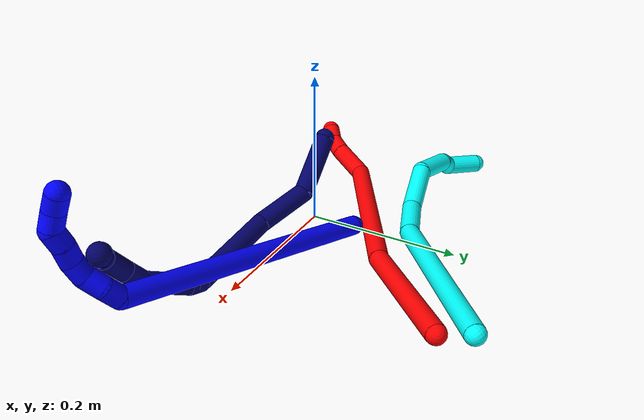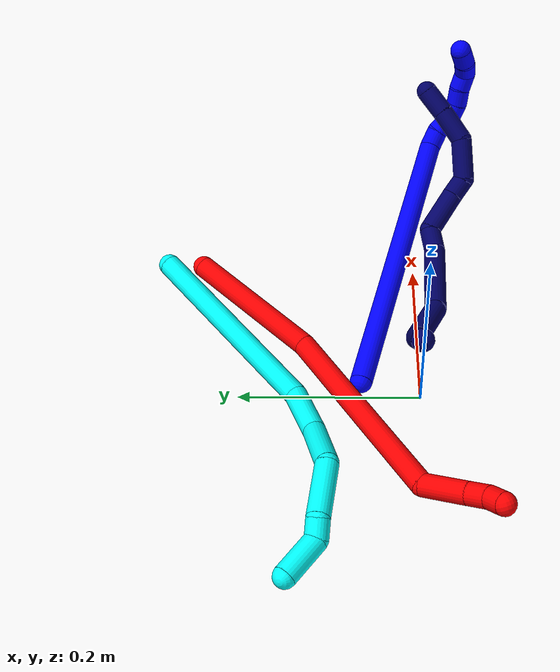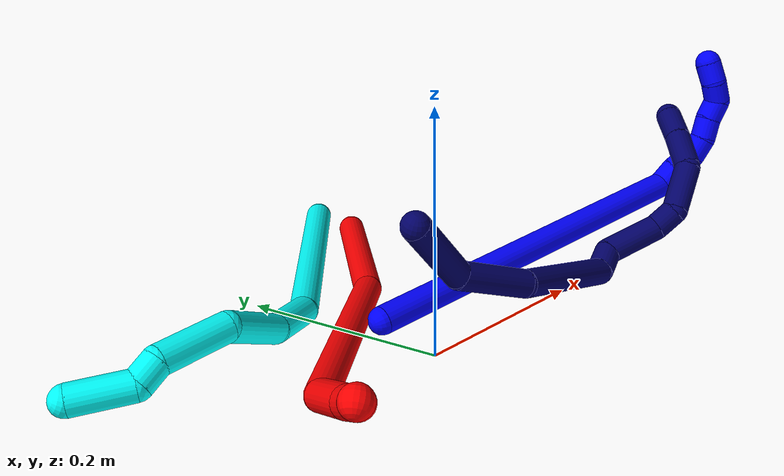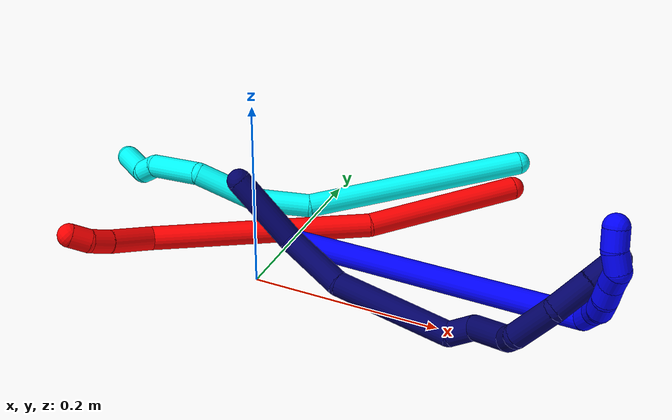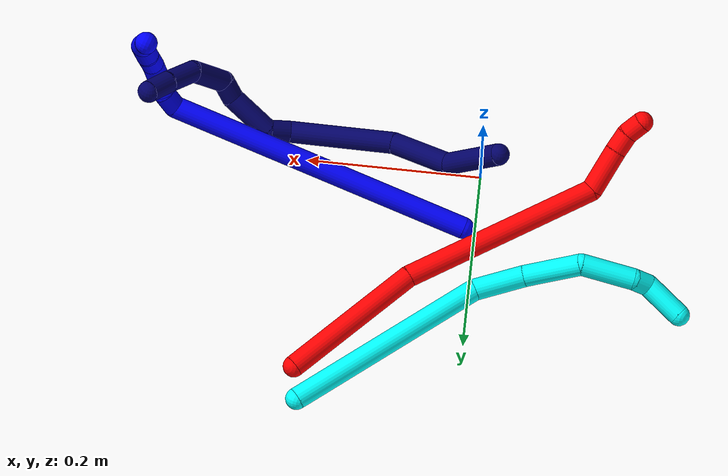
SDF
<sdf version="1.7">
 <world name="default">
  <model name="1">
   <static>0</static>
   <link name="1">
    <collision name="collision-cylinder-e_1_1_4">
     <pose>-0.001566 -0.007687 0.177678 0.043237 -0.008804 -0.00019</pose>
     <geometry><cylinder><radius>0.0125</radius><length>0.355702</length></cylinder></geometry>
     <surface>
      <friction><ode><mu>1.16</mu><mu2>1.16</mu2><slip1>0</slip1><slip2>0</slip2></ode></friction>
      <contact><ode><kp>1e+06</kp><kd>1</kd><max_vel>0</max_vel><min_depth>0.001</min_depth></ode></contact>
     </surface>
    </collision>
    <visual name="visual-cylinder-e_1_1_4">
     <pose>-0.001566 -0.007687 0.177678 0.043237 -0.008804 -0.00019</pose>
     <geometry><cylinder><radius>0.0125</radius><length>0.355702</length></cylinder></geometry>
     <material><ambient>0 0 1 1</ambient></material>
    </visual>
    <collision name="collision-cylinder-e_2_4_5">
     <pose>0.00257 -0.01144 0.363805 -0.435722 0.549009 -0.124523</pose>
     <geometry><cylinder><radius>0.0125</radius><length>0.021851</length></cylinder></geometry>
     <surface>
      <friction><ode><mu>1.16</mu><mu2>1.16</mu2><slip1>0</slip1><slip2>0</slip2></ode></friction>
      <contact><ode><kp>1e+06</kp><kd>1</kd><max_vel>0</max_vel><min_depth>0.001</min_depth></ode></contact>
     </surface>
    </collision>
    <visual name="visual-cylinder-e_2_4_5">
     <pose>0.00257 -0.01144 0.363805 -0.435722 0.549009 -0.124523</pose>
     <geometry><cylinder><radius>0.0125</radius><length>0.021851</length></cylinder></geometry>
     <material><ambient>0 0 1 1</ambient></material>
    </visual>
    <collision name="collision-cylinder-e_3_5_6">
     <pose>0.012336 -0.000748 0.379613 -0.742903 0.386412 -0.152128</pose>
     <geometry><cylinder><radius>0.0125</radius><length>0.021573</length></cylinder></geometry>
     <surface>
      <friction><ode><mu>1.16</mu><mu2>1.16</mu2><slip1>0</slip1><slip2>0</slip2></ode></friction>
      <contact><ode><kp>1e+06</kp><kd>1</kd><max_vel>0</max_vel><min_depth>0.001</min_depth></ode></contact>
     </surface>
    </collision>
    <visual name="visual-cylinder-e_3_5_6">
     <pose>0.012336 -0.000748 0.379613 -0.742903 0.386412 -0.152128</pose>
     <geometry><cylinder><radius>0.0125</radius><length>0.021573</length></cylinder></geometry>
     <material><ambient>0 0 1 1</ambient></material>
    </visual>
    <collision name="collision-cylinder-e_4_6_7">
     <pose>0.023668 0.010847 0.392634 -0.706877 0.773091 -0.298099</pose>
     <geometry><cylinder><radius>0.0125</radius><length>0.020809</length></cylinder></geometry>
     <surface>
      <friction><ode><mu>1.16</mu><mu2>1.16</mu2><slip1>0</slip1><slip2>0</slip2></ode></friction>
      <contact><ode><kp>1e+06</kp><kd>1</kd><max_vel>0</max_vel><min_depth>0.001</min_depth></ode></contact>
     </surface>
    </collision>
    <visual name="visual-cylinder-e_4_6_7">
     <pose>0.023668 0.010847 0.392634 -0.706877 0.773091 -0.298099</pose>
     <geometry><cylinder><radius>0.0125</radius><length>0.020809</length></cylinder></geometry>
     <material><ambient>0 0 1 1</ambient></material>
    </visual>
    <collision name="collision-cylinder-e_5_7_8">
     <pose>0.039541 0.018178 0.402748 -0.510825 1.03573 -0.295365</pose>
     <geometry><cylinder><radius>0.0125</radius><length>0.020013</length></cylinder></geometry>
     <surface>
      <friction><ode><mu>1.16</mu><mu2>1.16</mu2><slip1>0</slip1><slip2>0</slip2></ode></friction>
      <contact><ode><kp>1e+06</kp><kd>1</kd><max_vel>0</max_vel><min_depth>0.001</min_depth></ode></contact>
     </surface>
    </collision>
    <visual name="visual-cylinder-e_5_7_8">
     <pose>0.039541 0.018178 0.402748 -0.510825 1.03573 -0.295365</pose>
     <geometry><cylinder><radius>0.0125</radius><length>0.020013</length></cylinder></geometry>
     <material><ambient>0 0 1 1</ambient></material>
    </visual>
    <collision name="collision-cylinder-e_6_8_9">
     <pose>0.055709 0.0243 0.412673 -0.585214 0.855601 -0.273012</pose>
     <geometry><cylinder><radius>0.0125</radius><length>0.020028</length></cylinder></geometry>
     <surface>
      <friction><ode><mu>1.16</mu><mu2>1.16</mu2><slip1>0</slip1><slip2>0</slip2></ode></friction>
      <contact><ode><kp>1e+06</kp><kd>1</kd><max_vel>0</max_vel><min_depth>0.001</min_depth></ode></contact>
     </surface>
    </collision>
    <visual name="visual-cylinder-e_6_8_9">
     <pose>0.055709 0.0243 0.412673 -0.585214 0.855601 -0.273012</pose>
     <geometry><cylinder><radius>0.0125</radius><length>0.020028</length></cylinder></geometry>
     <material><ambient>0 0 1 1</ambient></material>
    </visual>
    <collision name="collision-cylinder-e_7_9_10">
     <pose>0.073004 0.029903 0.416972 -2.10718 1.33888 -1.89506</pose>
     <geometry><cylinder><radius>0.0125</radius><length>0.020004</length></cylinder></geometry>
     <surface>
      <friction><ode><mu>1.16</mu><mu2>1.16</mu2><slip1>0</slip1><slip2>0</slip2></ode></friction>
      <contact><ode><kp>1e+06</kp><kd>1</kd><max_vel>0</max_vel><min_depth>0.001</min_depth></ode></contact>
     </surface>
    </collision>
    <visual name="visual-cylinder-e_7_9_10">
     <pose>0.073004 0.029903 0.416972 -2.10718 1.33888 -1.89506</pose>
     <geometry><cylinder><radius>0.0125</radius><length>0.020004</length></cylinder></geometry>
     <material><ambient>0 0 1 1</ambient></material>
    </visual>
    <collision name="collision-cylinder-e_8_10_2">
     <pose>0.09274 0.031463 0.415761 1.65754 1.52901 1.61583</pose>
     <geometry><cylinder><radius>0.0125</radius><length>0.020019</length></cylinder></geometry>
     <surface>
      <friction><ode><mu>1.16</mu><mu2>1.16</mu2><slip1>0</slip1><slip2>0</slip2></ode></friction>
      <contact><ode><kp>1e+06</kp><kd>1</kd><max_vel>0</max_vel><min_depth>0.001</min_depth></ode></contact>
     </surface>
    </collision>
    <visual name="visual-cylinder-e_8_10_2">
     <pose>0.09274 0.031463 0.415761 1.65754 1.52901 1.61583</pose>
     <geometry><cylinder><radius>0.0125</radius><length>0.020019</length></cylinder></geometry>
     <material><ambient>0 0 1 1</ambient></material>
    </visual>
    <collision name="collision-sphere-2">
     <pose>0.102741 0.031046 0.415725 0 -0 0</pose>
     <geometry><sphere><radius>0.0125</radius></sphere></geometry>
     <surface>
      <friction><ode><mu>1.16</mu><mu2>1.16</mu2><slip1>0</slip1><slip2>0</slip2></ode></friction>
      <contact><ode><kp>1e+06</kp><kd>1</kd><max_vel>0</max_vel><min_depth>0.001</min_depth></ode></contact>
     </surface>
    </collision>
    <visual name="visual-sphere-2">
     <pose>0.102741 0.031046 0.415725 0 -0 0</pose>
     <geometry><sphere><radius>0.0125</radius></sphere></geometry>
     <material><ambient>0 0 1 1</ambient></material>
    </visual>
    <collision name="collision-sphere-10">
     <pose>0.082739 0.031879 0.415797 0 -0 0</pose>
     <geometry><sphere><radius>0.0125</radius></sphere></geometry>
     <surface>
      <friction><ode><mu>1.16</mu><mu2>1.16</mu2><slip1>0</slip1><slip2>0</slip2></ode></friction>
      <contact><ode><kp>1e+06</kp><kd>1</kd><max_vel>0</max_vel><min_depth>0.001</min_depth></ode></contact>
     </surface>
    </collision>
    <visual name="visual-sphere-10">
     <pose>0.082739 0.031879 0.415797 0 -0 0</pose>
     <geometry><sphere><radius>0.0125</radius></sphere></geometry>
     <material><ambient>0 0 1 1</ambient></material>
    </visual>
    <collision name="collision-sphere-9">
     <pose>0.06327 0.027927 0.418147 0 -0 0</pose>
     <geometry><sphere><radius>0.0125</radius></sphere></geometry>
     <surface>
      <friction><ode><mu>1.16</mu><mu2>1.16</mu2><slip1>0</slip1><slip2>0</slip2></ode></friction>
      <contact><ode><kp>1e+06</kp><kd>1</kd><max_vel>0</max_vel><min_depth>0.001</min_depth></ode></contact>
     </surface>
    </collision>
    <visual name="visual-sphere-9">
     <pose>0.06327 0.027927 0.418147 0 -0 0</pose>
     <geometry><sphere><radius>0.0125</radius></sphere></geometry>
     <material><ambient>0 0 1 1</ambient></material>
    </visual>
    <collision name="collision-sphere-4">
     <pose>-0.003131 -0.015374 0.355356 0 -0 0</pose>
     <geometry><sphere><radius>0.0125</radius></sphere></geometry>
     <surface>
      <friction><ode><mu>1.16</mu><mu2>1.16</mu2><slip1>0</slip1><slip2>0</slip2></ode></friction>
      <contact><ode><kp>1e+06</kp><kd>1</kd><max_vel>0</max_vel><min_depth>0.001</min_depth></ode></contact>
     </surface>
    </collision>
    <visual name="visual-sphere-4">
     <pose>-0.003131 -0.015374 0.355356 0 -0 0</pose>
     <geometry><sphere><radius>0.0125</radius></sphere></geometry>
     <material><ambient>0 0 1 1</ambient></material>
    </visual>
    <collision name="collision-sphere-1">
     <geometry><sphere><radius>0.0125</radius></sphere></geometry>
     <surface>
      <friction><ode><mu>1.16</mu><mu2>1.16</mu2><slip1>0</slip1><slip2>0</slip2></ode></friction>
      <contact><ode><kp>1e+06</kp><kd>1</kd><max_vel>0</max_vel><min_depth>0.001</min_depth></ode></contact>
     </surface>
    </collision>
    <visual name="visual-sphere-1">
     <geometry><sphere><radius>0.0125</radius></sphere></geometry>
     <material><ambient>0 0 1 1</ambient></material>
    </visual>
    <collision name="collision-sphere-8">
     <pose>0.048149 0.020672 0.407198 0 -0 0</pose>
     <geometry><sphere><radius>0.0125</radius></sphere></geometry>
     <surface>
      <friction><ode><mu>1.16</mu><mu2>1.16</mu2><slip1>0</slip1><slip2>0</slip2></ode></friction>
      <contact><ode><kp>1e+06</kp><kd>1</kd><max_vel>0</max_vel><min_depth>0.001</min_depth></ode></contact>
     </surface>
    </collision>
    <visual name="visual-sphere-8">
     <pose>0.048149 0.020672 0.407198 0 -0 0</pose>
     <geometry><sphere><radius>0.0125</radius></sphere></geometry>
     <material><ambient>0 0 1 1</ambient></material>
    </visual>
    <collision name="collision-sphere-5">
     <pose>0.008271 -0.007507 0.372254 0 -0 0</pose>
     <geometry><sphere><radius>0.0125</radius></sphere></geometry>
     <surface>
      <friction><ode><mu>1.16</mu><mu2>1.16</mu2><slip1>0</slip1><slip2>0</slip2></ode></friction>
      <contact><ode><kp>1e+06</kp><kd>1</kd><max_vel>0</max_vel><min_depth>0.001</min_depth></ode></contact>
     </surface>
    </collision>
    <visual name="visual-sphere-5">
     <pose>0.008271 -0.007507 0.372254 0 -0 0</pose>
     <geometry><sphere><radius>0.0125</radius></sphere></geometry>
     <material><ambient>0 0 1 1</ambient></material>
    </visual>
    <collision name="collision-sphere-6">
     <pose>0.016402 0.00601 0.386971 0 -0 0</pose>
     <geometry><sphere><radius>0.0125</radius></sphere></geometry>
     <surface>
      <friction><ode><mu>1.16</mu><mu2>1.16</mu2><slip1>0</slip1><slip2>0</slip2></ode></friction>
      <contact><ode><kp>1e+06</kp><kd>1</kd><max_vel>0</max_vel><min_depth>0.001</min_depth></ode></contact>
     </surface>
    </collision>
    <visual name="visual-sphere-6">
     <pose>0.016402 0.00601 0.386971 0 -0 0</pose>
     <geometry><sphere><radius>0.0125</radius></sphere></geometry>
     <material><ambient>0 0 1 1</ambient></material>
    </visual>
    <collision name="collision-sphere-7">
     <pose>0.030934 0.015683 0.398297 0 -0 0</pose>
     <geometry><sphere><radius>0.0125</radius></sphere></geometry>
     <surface>
      <friction><ode><mu>1.16</mu><mu2>1.16</mu2><slip1>0</slip1><slip2>0</slip2></ode></friction>
      <contact><ode><kp>1e+06</kp><kd>1</kd><max_vel>0</max_vel><min_depth>0.001</min_depth></ode></contact>
     </surface>
    </collision>
    <visual name="visual-sphere-7">
     <pose>0.030934 0.015683 0.398297 0 -0 0</pose>
     <geometry><sphere><radius>0.0125</radius></sphere></geometry>
     <material><ambient>0 0 1 1</ambient></material>
    </visual>
    <inertial>
     <pose>0.010964 -0.001392 0.240999 0 -0 0</pose>
     <mass>0.5</mass>
     <inertia>
      <ixx>0.003776</ixx>
      <ixy>0</ixy>
      <ixz>0</ixz>
      <iyy>0.003771</iyy>
      <iyz>0</iyz>
      <izz>0.000217</izz>
     </inertia>
    </inertial>
   </link>
   <pose>0.013234 0.064981 0.011856 0.830226 -1.27227 1.98934</pose>
  </model>
  <model name="2">
   <static>0</static>
   <link name="2">
    <collision name="collision-cylinder-e_1_1_4">
     <pose>-0.030036 -0.052228 -0.058912 2.41626 -0.364463 -0.904189</pose>
     <geometry><cylinder><radius>0.0125</radius><length>0.168531</length></cylinder></geometry>
     <surface>
      <friction><ode><mu>1.16</mu><mu2>1.16</mu2><slip1>0</slip1><slip2>0</slip2></ode></friction>
      <contact><ode><kp>1e+06</kp><kd>1</kd><max_vel>0</max_vel><min_depth>0.001</min_depth></ode></contact>
     </surface>
    </collision>
    <visual name="visual-cylinder-e_1_1_4">
     <pose>-0.030036 -0.052228 -0.058912 2.41626 -0.364463 -0.904189</pose>
     <geometry><cylinder><radius>0.0125</radius><length>0.168531</length></cylinder></geometry>
     <material><ambient>1 0 0 1</ambient></material>
    </visual>
    <collision name="collision-cylinder-e_2_4_5">
     <pose>-0.124898 -0.159164 -0.197714 2.54115 -0.589967 -1.55211</pose>
     <geometry><cylinder><radius>0.0125</radius><length>0.233045</length></cylinder></geometry>
     <surface>
      <friction><ode><mu>1.16</mu><mu2>1.16</mu2><slip1>0</slip1><slip2>0</slip2></ode></friction>
      <contact><ode><kp>1e+06</kp><kd>1</kd><max_vel>0</max_vel><min_depth>0.001</min_depth></ode></contact>
     </surface>
    </collision>
    <visual name="visual-cylinder-e_2_4_5">
     <pose>-0.124898 -0.159164 -0.197714 2.54115 -0.589967 -1.55211</pose>
     <geometry><cylinder><radius>0.0125</radius><length>0.233045</length></cylinder></geometry>
     <material><ambient>1 0 0 1</ambient></material>
    </visual>
    <collision name="collision-cylinder-e_3_5_6">
     <pose>-0.198238 -0.23721 -0.286027 1.91722 -0.33058 -0.466479</pose>
     <geometry><cylinder><radius>0.0125</radius><length>0.052466</length></cylinder></geometry>
     <surface>
      <friction><ode><mu>1.16</mu><mu2>1.16</mu2><slip1>0</slip1><slip2>0</slip2></ode></friction>
      <contact><ode><kp>1e+06</kp><kd>1</kd><max_vel>0</max_vel><min_depth>0.001</min_depth></ode></contact>
     </surface>
    </collision>
    <visual name="visual-cylinder-e_3_5_6">
     <pose>-0.198238 -0.23721 -0.286027 1.91722 -0.33058 -0.466479</pose>
     <geometry><cylinder><radius>0.0125</radius><length>0.052466</length></cylinder></geometry>
     <material><ambient>1 0 0 1</ambient></material>
    </visual>
    <collision name="collision-cylinder-e_4_6_7">
     <pose>-0.211676 -0.27094 -0.297744 1.87762 -0.424203 -0.572098</pose>
     <geometry><cylinder><radius>0.0125</radius><length>0.023923</length></cylinder></geometry>
     <surface>
      <friction><ode><mu>1.16</mu><mu2>1.16</mu2><slip1>0</slip1><slip2>0</slip2></ode></friction>
      <contact><ode><kp>1e+06</kp><kd>1</kd><max_vel>0</max_vel><min_depth>0.001</min_depth></ode></contact>
     </surface>
    </collision>
    <visual name="visual-cylinder-e_4_6_7">
     <pose>-0.211676 -0.27094 -0.297744 1.87762 -0.424203 -0.572098</pose>
     <geometry><cylinder><radius>0.0125</radius><length>0.023923</length></cylinder></geometry>
     <material><ambient>1 0 0 1</ambient></material>
    </visual>
    <collision name="collision-cylinder-e_5_7_2">
     <pose>-0.224195 -0.288681 -0.304151 1.9717 -0.760682 -1.08628</pose>
     <geometry><cylinder><radius>0.0125</radius><length>0.022037</length></cylinder></geometry>
     <surface>
      <friction><ode><mu>1.16</mu><mu2>1.16</mu2><slip1>0</slip1><slip2>0</slip2></ode></friction>
      <contact><ode><kp>1e+06</kp><kd>1</kd><max_vel>0</max_vel><min_depth>0.001</min_depth></ode></contact>
     </surface>
    </collision>
    <visual name="visual-cylinder-e_5_7_2">
     <pose>-0.224195 -0.288681 -0.304151 1.9717 -0.760682 -1.08628</pose>
     <geometry><cylinder><radius>0.0125</radius><length>0.022037</length></cylinder></geometry>
     <material><ambient>1 0 0 1</ambient></material>
    </visual>
    <collision name="collision-sphere-2">
     <pose>-0.231792 -0.296029 -0.307266 0 -0 0</pose>
     <geometry><sphere><radius>0.0125</radius></sphere></geometry>
     <surface>
      <friction><ode><mu>1.16</mu><mu2>1.16</mu2><slip1>0</slip1><slip2>0</slip2></ode></friction>
      <contact><ode><kp>1e+06</kp><kd>1</kd><max_vel>0</max_vel><min_depth>0.001</min_depth></ode></contact>
     </surface>
    </collision>
    <visual name="visual-sphere-2">
     <pose>-0.231792 -0.296029 -0.307266 0 -0 0</pose>
     <geometry><sphere><radius>0.0125</radius></sphere></geometry>
     <material><ambient>1 0 0 1</ambient></material>
    </visual>
    <collision name="collision-sphere-7">
     <pose>-0.216599 -0.281332 -0.301037 0 -0 0</pose>
     <geometry><sphere><radius>0.0125</radius></sphere></geometry>
     <surface>
      <friction><ode><mu>1.16</mu><mu2>1.16</mu2><slip1>0</slip1><slip2>0</slip2></ode></friction>
      <contact><ode><kp>1e+06</kp><kd>1</kd><max_vel>0</max_vel><min_depth>0.001</min_depth></ode></contact>
     </surface>
    </collision>
    <visual name="visual-sphere-7">
     <pose>-0.216599 -0.281332 -0.301037 0 -0 0</pose>
     <geometry><sphere><radius>0.0125</radius></sphere></geometry>
     <material><ambient>1 0 0 1</ambient></material>
    </visual>
    <collision name="collision-sphere-6">
     <pose>-0.206753 -0.260548 -0.294452 0 -0 0</pose>
     <geometry><sphere><radius>0.0125</radius></sphere></geometry>
     <surface>
      <friction><ode><mu>1.16</mu><mu2>1.16</mu2><slip1>0</slip1><slip2>0</slip2></ode></friction>
      <contact><ode><kp>1e+06</kp><kd>1</kd><max_vel>0</max_vel><min_depth>0.001</min_depth></ode></contact>
     </surface>
    </collision>
    <visual name="visual-sphere-6">
     <pose>-0.206753 -0.260548 -0.294452 0 -0 0</pose>
     <geometry><sphere><radius>0.0125</radius></sphere></geometry>
     <material><ambient>1 0 0 1</ambient></material>
    </visual>
    <collision name="collision-sphere-5">
     <pose>-0.189723 -0.213871 -0.277603 0 -0 0</pose>
     <geometry><sphere><radius>0.0125</radius></sphere></geometry>
     <surface>
      <friction><ode><mu>1.16</mu><mu2>1.16</mu2><slip1>0</slip1><slip2>0</slip2></ode></friction>
      <contact><ode><kp>1e+06</kp><kd>1</kd><max_vel>0</max_vel><min_depth>0.001</min_depth></ode></contact>
     </surface>
    </collision>
    <visual name="visual-sphere-5">
     <pose>-0.189723 -0.213871 -0.277603 0 -0 0</pose>
     <geometry><sphere><radius>0.0125</radius></sphere></geometry>
     <material><ambient>1 0 0 1</ambient></material>
    </visual>
    <collision name="collision-sphere-1">
     <geometry><sphere><radius>0.0125</radius></sphere></geometry>
     <surface>
      <friction><ode><mu>1.16</mu><mu2>1.16</mu2><slip1>0</slip1><slip2>0</slip2></ode></friction>
      <contact><ode><kp>1e+06</kp><kd>1</kd><max_vel>0</max_vel><min_depth>0.001</min_depth></ode></contact>
     </surface>
    </collision>
    <visual name="visual-sphere-1">
     <geometry><sphere><radius>0.0125</radius></sphere></geometry>
     <material><ambient>1 0 0 1</ambient></material>
    </visual>
    <collision name="collision-sphere-4">
     <pose>-0.060072 -0.104457 -0.117825 0 -0 0</pose>
     <geometry><sphere><radius>0.0125</radius></sphere></geometry>
     <surface>
      <friction><ode><mu>1.16</mu><mu2>1.16</mu2><slip1>0</slip1><slip2>0</slip2></ode></friction>
      <contact><ode><kp>1e+06</kp><kd>1</kd><max_vel>0</max_vel><min_depth>0.001</min_depth></ode></contact>
     </surface>
    </collision>
    <visual name="visual-sphere-4">
     <pose>-0.060072 -0.104457 -0.117825 0 -0 0</pose>
     <geometry><sphere><radius>0.0125</radius></sphere></geometry>
     <material><ambient>1 0 0 1</ambient></material>
    </visual>
    <inertial>
     <pose>-0.109148 -0.142366 -0.169673 0 -0 0</pose>
     <mass>0.5</mass>
     <inertia>
      <ixx>-0.000943</ixx>
      <ixy>0</ixy>
      <ixz>0</ixz>
      <iyy>-0.001009</iyy>
      <iyz>0</iyz>
      <izz>0.001485</izz>
     </inertia>
    </inertial>
   </link>
   <pose>0.186507 0.24909 0.022735 -0.482882 0.611522 -0.265885</pose>
  </model>
  <model name="3">
   <static>0</static>
   <link name="3">
    <collision name="collision-cylinder-e_1_1_4">
     <pose>-0.111582 -0.017149 0.041565 0.391317 -1.18774 -0.26605</pose>
     <geometry><cylinder><radius>0.0125</radius><length>0.240602</length></cylinder></geometry>
     <surface>
      <friction><ode><mu>1.16</mu><mu2>1.16</mu2><slip1>0</slip1><slip2>0</slip2></ode></friction>
      <contact><ode><kp>1e+06</kp><kd>1</kd><max_vel>0</max_vel><min_depth>0.001</min_depth></ode></contact>
     </surface>
    </collision>
    <visual name="visual-cylinder-e_1_1_4">
     <pose>-0.111582 -0.017149 0.041565 0.391317 -1.18774 -0.26605</pose>
     <geometry><cylinder><radius>0.0125</radius><length>0.240602</length></cylinder></geometry>
     <material><ambient>0.003922 1 0.996078 1</ambient></material>
    </visual>
    <collision name="collision-cylinder-e_2_4_5">
     <pose>-0.245058 -0.03839 0.102449 0.208671 -0.836893 -0.093069</pose>
     <geometry><cylinder><radius>0.0125</radius><length>0.058968</length></cylinder></geometry>
     <surface>
      <friction><ode><mu>1.16</mu><mu2>1.16</mu2><slip1>0</slip1><slip2>0</slip2></ode></friction>
      <contact><ode><kp>1e+06</kp><kd>1</kd><max_vel>0</max_vel><min_depth>0.001</min_depth></ode></contact>
     </surface>
    </collision>
    <visual name="visual-cylinder-e_2_4_5">
     <pose>-0.245058 -0.03839 0.102449 0.208671 -0.836893 -0.093069</pose>
     <geometry><cylinder><radius>0.0125</radius><length>0.058968</length></cylinder></geometry>
     <material><ambient>0.003922 1 0.996078 1</ambient></material>
    </visual>
    <collision name="collision-cylinder-e_3_5_6">
     <pose>-0.284615 -0.053197 0.149144 0.373113 -0.540998 -0.104584</pose>
     <geometry><cylinder><radius>0.0125</radius><length>0.068594</length></cylinder></geometry>
     <surface>
      <friction><ode><mu>1.16</mu><mu2>1.16</mu2><slip1>0</slip1><slip2>0</slip2></ode></friction>
      <contact><ode><kp>1e+06</kp><kd>1</kd><max_vel>0</max_vel><min_depth>0.001</min_depth></ode></contact>
     </surface>
    </collision>
    <visual name="visual-cylinder-e_3_5_6">
     <pose>-0.284615 -0.053197 0.149144 0.373113 -0.540998 -0.104584</pose>
     <geometry><cylinder><radius>0.0125</radius><length>0.068594</length></cylinder></geometry>
     <material><ambient>0.003922 1 0.996078 1</ambient></material>
    </visual>
    <collision name="collision-cylinder-e_4_6_7">
     <pose>-0.316675 -0.05481 0.202013 -0.34302 -0.48881 0.086341</pose>
     <geometry><cylinder><radius>0.0125</radius><length>0.061318</length></cylinder></geometry>
     <surface>
      <friction><ode><mu>1.16</mu><mu2>1.16</mu2><slip1>0</slip1><slip2>0</slip2></ode></friction>
      <contact><ode><kp>1e+06</kp><kd>1</kd><max_vel>0</max_vel><min_depth>0.001</min_depth></ode></contact>
     </surface>
    </collision>
    <visual name="visual-cylinder-e_4_6_7">
     <pose>-0.316675 -0.05481 0.202013 -0.34302 -0.48881 0.086341</pose>
     <geometry><cylinder><radius>0.0125</radius><length>0.061318</length></cylinder></geometry>
     <material><ambient>0.003922 1 0.996078 1</ambient></material>
    </visual>
    <collision name="collision-cylinder-e_5_7_8">
     <pose>-0.33732 -0.038814 0.233177 -0.882114 -0.610803 0.295486</pose>
     <geometry><cylinder><radius>0.0125</radius><length>0.021792</length></cylinder></geometry>
     <surface>
      <friction><ode><mu>1.16</mu><mu2>1.16</mu2><slip1>0</slip1><slip2>0</slip2></ode></friction>
      <contact><ode><kp>1e+06</kp><kd>1</kd><max_vel>0</max_vel><min_depth>0.001</min_depth></ode></contact>
     </surface>
    </collision>
    <visual name="visual-cylinder-e_5_7_8">
     <pose>-0.33732 -0.038814 0.233177 -0.882114 -0.610803 0.295486</pose>
     <geometry><cylinder><radius>0.0125</radius><length>0.021792</length></cylinder></geometry>
     <material><ambient>0.003922 1 0.996078 1</ambient></material>
    </visual>
    <collision name="collision-cylinder-e_6_8_2">
     <pose>-0.34322 -0.020548 0.260391 -0.485829 0.014353 -0.003557</pose>
     <geometry><cylinder><radius>0.0125</radius><length>0.048726</length></cylinder></geometry>
     <surface>
      <friction><ode><mu>1.16</mu><mu2>1.16</mu2><slip1>0</slip1><slip2>0</slip2></ode></friction>
      <contact><ode><kp>1e+06</kp><kd>1</kd><max_vel>0</max_vel><min_depth>0.001</min_depth></ode></contact>
     </surface>
    </collision>
    <visual name="visual-cylinder-e_6_8_2">
     <pose>-0.34322 -0.020548 0.260391 -0.485829 0.014353 -0.003557</pose>
     <geometry><cylinder><radius>0.0125</radius><length>0.048726</length></cylinder></geometry>
     <material><ambient>0.003922 1 0.996078 1</ambient></material>
    </visual>
    <collision name="collision-sphere-2">
     <pose>-0.34287 -0.009173 0.281933 0 -0 0</pose>
     <geometry><sphere><radius>0.0125</radius></sphere></geometry>
     <surface>
      <friction><ode><mu>1.16</mu><mu2>1.16</mu2><slip1>0</slip1><slip2>0</slip2></ode></friction>
      <contact><ode><kp>1e+06</kp><kd>1</kd><max_vel>0</max_vel><min_depth>0.001</min_depth></ode></contact>
     </surface>
    </collision>
    <visual name="visual-sphere-2">
     <pose>-0.34287 -0.009173 0.281933 0 -0 0</pose>
     <geometry><sphere><radius>0.0125</radius></sphere></geometry>
     <material><ambient>0.003922 1 0.996078 1</ambient></material>
    </visual>
    <collision name="collision-sphere-4">
     <pose>-0.223164 -0.034299 0.083129 0 -0 0</pose>
     <geometry><sphere><radius>0.0125</radius></sphere></geometry>
     <surface>
      <friction><ode><mu>1.16</mu><mu2>1.16</mu2><slip1>0</slip1><slip2>0</slip2></ode></friction>
      <contact><ode><kp>1e+06</kp><kd>1</kd><max_vel>0</max_vel><min_depth>0.001</min_depth></ode></contact>
     </surface>
    </collision>
    <visual name="visual-sphere-4">
     <pose>-0.223164 -0.034299 0.083129 0 -0 0</pose>
     <geometry><sphere><radius>0.0125</radius></sphere></geometry>
     <material><ambient>0.003922 1 0.996078 1</ambient></material>
    </visual>
    <collision name="collision-sphere-1">
     <geometry><sphere><radius>0.0125</radius></sphere></geometry>
     <surface>
      <friction><ode><mu>1.16</mu><mu2>1.16</mu2><slip1>0</slip1><slip2>0</slip2></ode></friction>
      <contact><ode><kp>1e+06</kp><kd>1</kd><max_vel>0</max_vel><min_depth>0.001</min_depth></ode></contact>
     </surface>
    </collision>
    <visual name="visual-sphere-1">
     <geometry><sphere><radius>0.0125</radius></sphere></geometry>
     <material><ambient>0.003922 1 0.996078 1</ambient></material>
    </visual>
    <collision name="collision-sphere-8">
     <pose>-0.343569 -0.031923 0.23885 0 -0 0</pose>
     <geometry><sphere><radius>0.0125</radius></sphere></geometry>
     <surface>
      <friction><ode><mu>1.16</mu><mu2>1.16</mu2><slip1>0</slip1><slip2>0</slip2></ode></friction>
      <contact><ode><kp>1e+06</kp><kd>1</kd><max_vel>0</max_vel><min_depth>0.001</min_depth></ode></contact>
     </surface>
    </collision>
    <visual name="visual-sphere-8">
     <pose>-0.343569 -0.031923 0.23885 0 -0 0</pose>
     <geometry><sphere><radius>0.0125</radius></sphere></geometry>
     <material><ambient>0.003922 1 0.996078 1</ambient></material>
    </visual>
    <collision name="collision-sphere-5">
     <pose>-0.266952 -0.042481 0.121768 0 -0 0</pose>
     <geometry><sphere><radius>0.0125</radius></sphere></geometry>
     <surface>
      <friction><ode><mu>1.16</mu><mu2>1.16</mu2><slip1>0</slip1><slip2>0</slip2></ode></friction>
      <contact><ode><kp>1e+06</kp><kd>1</kd><max_vel>0</max_vel><min_depth>0.001</min_depth></ode></contact>
     </surface>
    </collision>
    <visual name="visual-sphere-5">
     <pose>-0.266952 -0.042481 0.121768 0 -0 0</pose>
     <geometry><sphere><radius>0.0125</radius></sphere></geometry>
     <material><ambient>0.003922 1 0.996078 1</ambient></material>
    </visual>
    <collision name="collision-sphere-6">
     <pose>-0.302278 -0.063914 0.176521 0 -0 0</pose>
     <geometry><sphere><radius>0.0125</radius></sphere></geometry>
     <surface>
      <friction><ode><mu>1.16</mu><mu2>1.16</mu2><slip1>0</slip1><slip2>0</slip2></ode></friction>
      <contact><ode><kp>1e+06</kp><kd>1</kd><max_vel>0</max_vel><min_depth>0.001</min_depth></ode></contact>
     </surface>
    </collision>
    <visual name="visual-sphere-6">
     <pose>-0.302278 -0.063914 0.176521 0 -0 0</pose>
     <geometry><sphere><radius>0.0125</radius></sphere></geometry>
     <material><ambient>0.003922 1 0.996078 1</ambient></material>
    </visual>
    <collision name="collision-sphere-7">
     <pose>-0.331071 -0.045705 0.227505 0 -0 0</pose>
     <geometry><sphere><radius>0.0125</radius></sphere></geometry>
     <surface>
      <friction><ode><mu>1.16</mu><mu2>1.16</mu2><slip1>0</slip1><slip2>0</slip2></ode></friction>
      <contact><ode><kp>1e+06</kp><kd>1</kd><max_vel>0</max_vel><min_depth>0.001</min_depth></ode></contact>
     </surface>
    </collision>
    <visual name="visual-sphere-7">
     <pose>-0.331071 -0.045705 0.227505 0 -0 0</pose>
     <geometry><sphere><radius>0.0125</radius></sphere></geometry>
     <material><ambient>0.003922 1 0.996078 1</ambient></material>
    </visual>
    <inertial>
     <pose>-0.208626 -0.030494 0.112857 0 -0 0</pose>
     <mass>0.5</mass>
     <inertia>
      <ixx>0.000348</ixx>
      <ixy>0</ixy>
      <ixz>0</ixz>
      <iyy>0.001114</iyy>
      <iyz>0</iyz>
      <izz>0.001314</izz>
     </inertia>
    </inertial>
   </link>
   <pose>0.178856 0.288255 0.032273 -1.21595 -0.356933 0.966239</pose>
  </model>
  <model name="7">
   <static>0</static>
   <link name="7">
    <collision name="collision-cylinder-e_1_1_4">
     <pose>0.017649 -0.018575 -0.029362 2.57752 0.470012 1.38115</pose>
     <geometry><cylinder><radius>0.0125</radius><length>0.077939</length></cylinder></geometry>
     <surface>
      <friction><ode><mu>1.16</mu><mu2>1.16</mu2><slip1>0</slip1><slip2>0</slip2></ode></friction>
      <contact><ode><kp>1e+06</kp><kd>1</kd><max_vel>0</max_vel><min_depth>0.001</min_depth></ode></contact>
     </surface>
    </collision>
    <visual name="visual-cylinder-e_1_1_4">
     <pose>0.017649 -0.018575 -0.029362 2.57752 0.470012 1.38115</pose>
     <geometry><cylinder><radius>0.0125</radius><length>0.077939</length></cylinder></geometry>
     <material><ambient>0.003922 0 0.403922 1</ambient></material>
    </visual>
    <collision name="collision-cylinder-e_2_4_5">
     <pose>0.057651 -0.063397 -0.068714 1.93449 0.672242 0.938165</pose>
     <geometry><cylinder><radius>0.0125</radius><length>0.071787</length></cylinder></geometry>
     <surface>
      <friction><ode><mu>1.16</mu><mu2>1.16</mu2><slip1>0</slip1><slip2>0</slip2></ode></friction>
      <contact><ode><kp>1e+06</kp><kd>1</kd><max_vel>0</max_vel><min_depth>0.001</min_depth></ode></contact>
     </surface>
    </collision>
    <visual name="visual-cylinder-e_2_4_5">
     <pose>0.057651 -0.063397 -0.068714 1.93449 0.672242 0.938165</pose>
     <geometry><cylinder><radius>0.0125</radius><length>0.071787</length></cylinder></geometry>
     <material><ambient>0.003922 0 0.403922 1</ambient></material>
    </visual>
    <collision name="collision-cylinder-e_3_5_6">
     <pose>0.130563 -0.119194 -0.096185 2.10501 0.97426 1.49704</pose>
     <geometry><cylinder><radius>0.0125</radius><length>0.122231</length></cylinder></geometry>
     <surface>
      <friction><ode><mu>1.16</mu><mu2>1.16</mu2><slip1>0</slip1><slip2>0</slip2></ode></friction>
      <contact><ode><kp>1e+06</kp><kd>1</kd><max_vel>0</max_vel><min_depth>0.001</min_depth></ode></contact>
     </surface>
    </collision>
    <visual name="visual-cylinder-e_3_5_6">
     <pose>0.130563 -0.119194 -0.096185 2.10501 0.97426 1.49704</pose>
     <geometry><cylinder><radius>0.0125</radius><length>0.122231</length></cylinder></geometry>
     <material><ambient>0.003922 0 0.403922 1</ambient></material>
    </visual>
    <collision name="collision-cylinder-e_4_6_7">
     <pose>0.194631 -0.149611 -0.111033 0.317889 1.36834 0.259995</pose>
     <geometry><cylinder><radius>0.0125</radius><length>0.027578</length></cylinder></geometry>
     <surface>
      <friction><ode><mu>1.16</mu><mu2>1.16</mu2><slip1>0</slip1><slip2>0</slip2></ode></friction>
      <contact><ode><kp>1e+06</kp><kd>1</kd><max_vel>0</max_vel><min_depth>0.001</min_depth></ode></contact>
     </surface>
    </collision>
    <visual name="visual-cylinder-e_4_6_7">
     <pose>0.194631 -0.149611 -0.111033 0.317889 1.36834 0.259995</pose>
     <geometry><cylinder><radius>0.0125</radius><length>0.027578</length></cylinder></geometry>
     <material><ambient>0.003922 0 0.403922 1</ambient></material>
    </visual>
    <collision name="collision-cylinder-e_5_7_8">
     <pose>0.225929 -0.168766 -0.097879 1.0488 0.700543 0.416506</pose>
     <geometry><cylinder><radius>0.0125</radius><length>0.055195</length></cylinder></geometry>
     <surface>
      <friction><ode><mu>1.16</mu><mu2>1.16</mu2><slip1>0</slip1><slip2>0</slip2></ode></friction>
      <contact><ode><kp>1e+06</kp><kd>1</kd><max_vel>0</max_vel><min_depth>0.001</min_depth></ode></contact>
     </surface>
    </collision>
    <visual name="visual-cylinder-e_5_7_8">
     <pose>0.225929 -0.168766 -0.097879 1.0488 0.700543 0.416506</pose>
     <geometry><cylinder><radius>0.0125</radius><length>0.055195</length></cylinder></geometry>
     <material><ambient>0.003922 0 0.403922 1</ambient></material>
    </visual>
    <collision name="collision-cylinder-e_6_8_9">
     <pose>0.249107 -0.192914 -0.078445 0.581513 0.467728 0.142329</pose>
     <geometry><cylinder><radius>0.0125</radius><length>0.023902</length></cylinder></geometry>
     <surface>
      <friction><ode><mu>1.16</mu><mu2>1.16</mu2><slip1>0</slip1><slip2>0</slip2></ode></friction>
      <contact><ode><kp>1e+06</kp><kd>1</kd><max_vel>0</max_vel><min_depth>0.001</min_depth></ode></contact>
     </surface>
    </collision>
    <visual name="visual-cylinder-e_6_8_9">
     <pose>0.249107 -0.192914 -0.078445 0.581513 0.467728 0.142329</pose>
     <geometry><cylinder><radius>0.0125</radius><length>0.023902</length></cylinder></geometry>
     <material><ambient>0.003922 0 0.403922 1</ambient></material>
    </visual>
    <collision name="collision-cylinder-e_7_9_10">
     <pose>0.274986 -0.198559 -0.056197 -0.016013 0.993818 -0.008684</pose>
     <geometry><cylinder><radius>0.0125</radius><length>0.048897</length></cylinder></geometry>
     <surface>
      <friction><ode><mu>1.16</mu><mu2>1.16</mu2><slip1>0</slip1><slip2>0</slip2></ode></friction>
      <contact><ode><kp>1e+06</kp><kd>1</kd><max_vel>0</max_vel><min_depth>0.001</min_depth></ode></contact>
     </surface>
    </collision>
    <visual name="visual-cylinder-e_7_9_10">
     <pose>0.274986 -0.198559 -0.056197 -0.016013 0.993818 -0.008684</pose>
     <geometry><cylinder><radius>0.0125</radius><length>0.048897</length></cylinder></geometry>
     <material><ambient>0.003922 0 0.403922 1</ambient></material>
    </visual>
    <collision name="collision-cylinder-e_8_10_11">
     <pose>0.313319 -0.189878 -0.038463 -1.09166 1.0797 -0.698114</pose>
     <geometry><cylinder><radius>0.0125</radius><length>0.040468</length></cylinder></geometry>
     <surface>
      <friction><ode><mu>1.16</mu><mu2>1.16</mu2><slip1>0</slip1><slip2>0</slip2></ode></friction>
      <contact><ode><kp>1e+06</kp><kd>1</kd><max_vel>0</max_vel><min_depth>0.001</min_depth></ode></contact>
     </surface>
    </collision>
    <visual name="visual-cylinder-e_8_10_11">
     <pose>0.313319 -0.189878 -0.038463 -1.09166 1.0797 -0.698114</pose>
     <geometry><cylinder><radius>0.0125</radius><length>0.040468</length></cylinder></geometry>
     <material><ambient>0.003922 0 0.403922 1</ambient></material>
    </visual>
    <collision name="collision-cylinder-e_9_11_2">
     <pose>0.345142 -0.174159 -0.031234 -1.19874 1.06275 -0.763714</pose>
     <geometry><cylinder><radius>0.0125</radius><length>0.032002</length></cylinder></geometry>
     <surface>
      <friction><ode><mu>1.16</mu><mu2>1.16</mu2><slip1>0</slip1><slip2>0</slip2></ode></friction>
      <contact><ode><kp>1e+06</kp><kd>1</kd><max_vel>0</max_vel><min_depth>0.001</min_depth></ode></contact>
     </surface>
    </collision>
    <visual name="visual-cylinder-e_9_11_2">
     <pose>0.345142 -0.174159 -0.031234 -1.19874 1.06275 -0.763714</pose>
     <geometry><cylinder><radius>0.0125</radius><length>0.032002</length></cylinder></geometry>
     <material><ambient>0.003922 0 0.403922 1</ambient></material>
    </visual>
    <collision name="collision-sphere-2">
     <pose>0.359122 -0.166907 -0.028404 0 -0 0</pose>
     <geometry><sphere><radius>0.0125</radius></sphere></geometry>
     <surface>
      <friction><ode><mu>1.16</mu><mu2>1.16</mu2><slip1>0</slip1><slip2>0</slip2></ode></friction>
      <contact><ode><kp>1e+06</kp><kd>1</kd><max_vel>0</max_vel><min_depth>0.001</min_depth></ode></contact>
     </surface>
    </collision>
    <visual name="visual-sphere-2">
     <pose>0.359122 -0.166907 -0.028404 0 -0 0</pose>
     <geometry><sphere><radius>0.0125</radius></sphere></geometry>
     <material><ambient>0.003922 0 0.403922 1</ambient></material>
    </visual>
    <collision name="collision-sphere-11">
     <pose>0.331162 -0.18141 -0.034064 0 -0 0</pose>
     <geometry><sphere><radius>0.0125</radius></sphere></geometry>
     <surface>
      <friction><ode><mu>1.16</mu><mu2>1.16</mu2><slip1>0</slip1><slip2>0</slip2></ode></friction>
      <contact><ode><kp>1e+06</kp><kd>1</kd><max_vel>0</max_vel><min_depth>0.001</min_depth></ode></contact>
     </surface>
    </collision>
    <visual name="visual-sphere-11">
     <pose>0.331162 -0.18141 -0.034064 0 -0 0</pose>
     <geometry><sphere><radius>0.0125</radius></sphere></geometry>
     <material><ambient>0.003922 0 0.403922 1</ambient></material>
    </visual>
    <collision name="collision-sphere-10">
     <pose>0.295477 -0.198346 -0.042862 0 -0 0</pose>
     <geometry><sphere><radius>0.0125</radius></sphere></geometry>
     <surface>
      <friction><ode><mu>1.16</mu><mu2>1.16</mu2><slip1>0</slip1><slip2>0</slip2></ode></friction>
      <contact><ode><kp>1e+06</kp><kd>1</kd><max_vel>0</max_vel><min_depth>0.001</min_depth></ode></contact>
     </surface>
    </collision>
    <visual name="visual-sphere-10">
     <pose>0.295477 -0.198346 -0.042862 0 -0 0</pose>
     <geometry><sphere><radius>0.0125</radius></sphere></geometry>
     <material><ambient>0.003922 0 0.403922 1</ambient></material>
    </visual>
    <collision name="collision-sphere-9">
     <pose>0.254495 -0.198773 -0.069532 0 -0 0</pose>
     <geometry><sphere><radius>0.0125</radius></sphere></geometry>
     <surface>
      <friction><ode><mu>1.16</mu><mu2>1.16</mu2><slip1>0</slip1><slip2>0</slip2></ode></friction>
      <contact><ode><kp>1e+06</kp><kd>1</kd><max_vel>0</max_vel><min_depth>0.001</min_depth></ode></contact>
     </surface>
    </collision>
    <visual name="visual-sphere-9">
     <pose>0.254495 -0.198773 -0.069532 0 -0 0</pose>
     <geometry><sphere><radius>0.0125</radius></sphere></geometry>
     <material><ambient>0.003922 0 0.403922 1</ambient></material>
    </visual>
    <collision name="collision-sphere-4">
     <pose>0.035299 -0.03715 -0.058723 0 -0 0</pose>
     <geometry><sphere><radius>0.0125</radius></sphere></geometry>
     <surface>
      <friction><ode><mu>1.16</mu><mu2>1.16</mu2><slip1>0</slip1><slip2>0</slip2></ode></friction>
      <contact><ode><kp>1e+06</kp><kd>1</kd><max_vel>0</max_vel><min_depth>0.001</min_depth></ode></contact>
     </surface>
    </collision>
    <visual name="visual-sphere-4">
     <pose>0.035299 -0.03715 -0.058723 0 -0 0</pose>
     <geometry><sphere><radius>0.0125</radius></sphere></geometry>
     <material><ambient>0.003922 0 0.403922 1</ambient></material>
    </visual>
    <collision name="collision-sphere-1">
     <geometry><sphere><radius>0.0125</radius></sphere></geometry>
     <surface>
      <friction><ode><mu>1.16</mu><mu2>1.16</mu2><slip1>0</slip1><slip2>0</slip2></ode></friction>
      <contact><ode><kp>1e+06</kp><kd>1</kd><max_vel>0</max_vel><min_depth>0.001</min_depth></ode></contact>
     </surface>
    </collision>
    <visual name="visual-sphere-1">
     <geometry><sphere><radius>0.0125</radius></sphere></geometry>
     <material><ambient>0.003922 0 0.403922 1</ambient></material>
    </visual>
    <collision name="collision-sphere-8">
     <pose>0.243719 -0.187054 -0.087359 0 -0 0</pose>
     <geometry><sphere><radius>0.0125</radius></sphere></geometry>
     <surface>
      <friction><ode><mu>1.16</mu><mu2>1.16</mu2><slip1>0</slip1><slip2>0</slip2></ode></friction>
      <contact><ode><kp>1e+06</kp><kd>1</kd><max_vel>0</max_vel><min_depth>0.001</min_depth></ode></contact>
     </surface>
    </collision>
    <visual name="visual-sphere-8">
     <pose>0.243719 -0.187054 -0.087359 0 -0 0</pose>
     <geometry><sphere><radius>0.0125</radius></sphere></geometry>
     <material><ambient>0.003922 0 0.403922 1</ambient></material>
    </visual>
    <collision name="collision-sphere-5">
     <pose>0.080003 -0.089645 -0.078704 0 -0 0</pose>
     <geometry><sphere><radius>0.0125</radius></sphere></geometry>
     <surface>
      <friction><ode><mu>1.16</mu><mu2>1.16</mu2><slip1>0</slip1><slip2>0</slip2></ode></friction>
      <contact><ode><kp>1e+06</kp><kd>1</kd><max_vel>0</max_vel><min_depth>0.001</min_depth></ode></contact>
     </surface>
    </collision>
    <visual name="visual-sphere-5">
     <pose>0.080003 -0.089645 -0.078704 0 -0 0</pose>
     <geometry><sphere><radius>0.0125</radius></sphere></geometry>
     <material><ambient>0.003922 0 0.403922 1</ambient></material>
    </visual>
    <collision name="collision-sphere-6">
     <pose>0.181123 -0.148744 -0.113667 0 -0 0</pose>
     <geometry><sphere><radius>0.0125</radius></sphere></geometry>
     <surface>
      <friction><ode><mu>1.16</mu><mu2>1.16</mu2><slip1>0</slip1><slip2>0</slip2></ode></friction>
      <contact><ode><kp>1e+06</kp><kd>1</kd><max_vel>0</max_vel><min_depth>0.001</min_depth></ode></contact>
     </surface>
    </collision>
    <visual name="visual-sphere-6">
     <pose>0.181123 -0.148744 -0.113667 0 -0 0</pose>
     <geometry><sphere><radius>0.0125</radius></sphere></geometry>
     <material><ambient>0.003922 0 0.403922 1</ambient></material>
    </visual>
    <collision name="collision-sphere-7">
     <pose>0.208138 -0.150477 -0.108399 0 -0 0</pose>
     <geometry><sphere><radius>0.0125</radius></sphere></geometry>
     <surface>
      <friction><ode><mu>1.16</mu><mu2>1.16</mu2><slip1>0</slip1><slip2>0</slip2></ode></friction>
      <contact><ode><kp>1e+06</kp><kd>1</kd><max_vel>0</max_vel><min_depth>0.001</min_depth></ode></contact>
     </surface>
    </collision>
    <visual name="visual-sphere-7">
     <pose>0.208138 -0.150477 -0.108399 0 -0 0</pose>
     <geometry><sphere><radius>0.0125</radius></sphere></geometry>
     <material><ambient>0.003922 0 0.403922 1</ambient></material>
    </visual>
    <inertial>
     <pose>0.164871 -0.123173 -0.069243 0 -0 0</pose>
     <mass>0.5</mass>
     <inertia>
      <ixx>0.000229</ixx>
      <ixy>0</ixy>
      <ixz>0</ixz>
      <iyy>0.000289</iyy>
      <iyz>0</iyz>
      <izz>-7.8e-05</izz>
     </inertia>
    </inertial>
   </link>
   <pose>-0.018937 0.003914 0.110428 0.301646 -0.298473 0.334614</pose>
  </model>
 </world>
</sdf>
